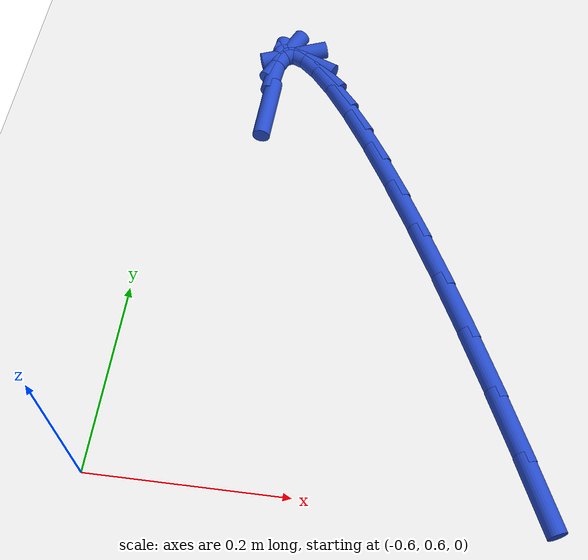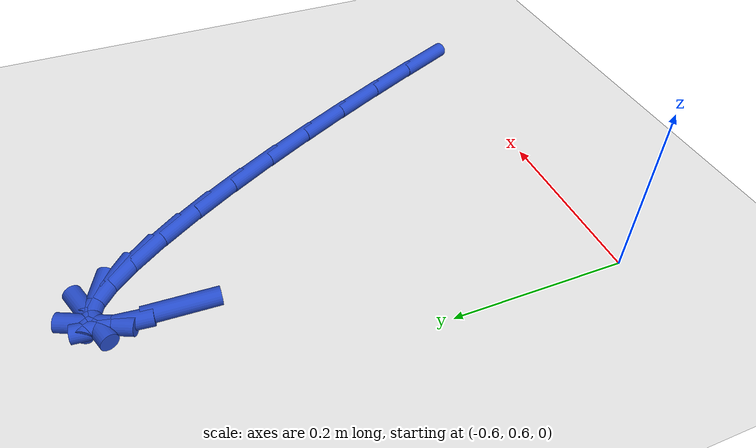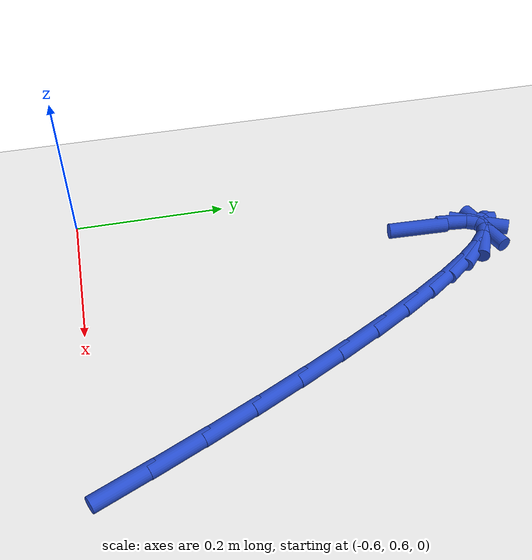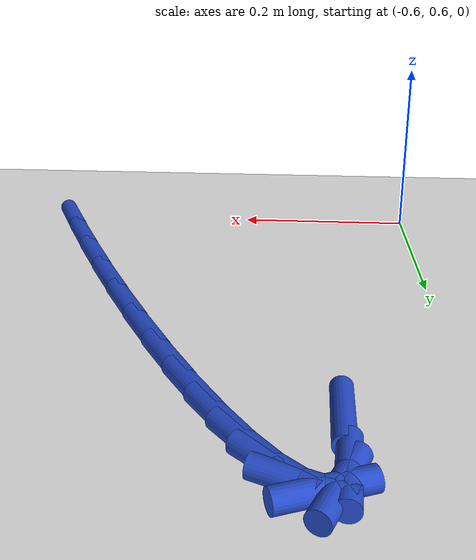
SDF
<sdf version="1.6">
 <world name="default">
  <model name="ground_plane">
   <static>1</static>
   <link name="link">
    <collision name="collision">
     <geometry><plane><normal>0 0 1</normal><size>100 100</size></plane></geometry>
     <surface><friction><ode><mu>100</mu><mu2>50</mu2></ode></friction></surface>
    </collision>
    <visual name="visual">
     <cast_shadows>0</cast_shadows>
     <geometry><plane><normal>0 0 1</normal><size>100 100</size></plane></geometry>
     <material>
      <script><uri>file://media/materials/scripts/gazebo.material</uri><name>Gazebo/WhiteGlow</name></script>
     </material>
    </visual>
   </link>
  </model>
  <model name="line">
   <link name="link_13">
    <pose>-0.17414973091709698 0.6288355741290564 0.01 0 1.57 -1.146900605725335</pose>
    <collision name="collision">
     <geometry><cylinder><radius>0.01</radius><length>0.08</length></cylinder></geometry>
    </collision>
    <visual name="visual">
     <material>
      <script><name>Gazebo/Blue</name><uri>file://media/materials/scripts/gazebo.material</uri></script>
     </material>
     <geometry><cylinder><radius>0.01</radius><length>0.08</length></cylinder></geometry>
    </visual>
   </link>
   <link name="link_14">
    <pose>-0.20246571434009497 0.6915852105498945 0.01 0 1.57 -1.1324726628470152</pose>
    <collision name="collision">
     <geometry><cylinder><radius>0.01</radius><length>0.08</length></cylinder></geometry>
    </collision>
    <visual name="visual">
     <material>
      <script><name>Gazebo/Blue</name><uri>file://media/materials/scripts/gazebo.material</uri></script>
     </material>
     <geometry><cylinder><radius>0.01</radius><length>0.08</length></cylinder></geometry>
    </visual>
   </link>
   <link name="link_15">
    <pose>-0.23149503730026788 0.7535165110334968 0.01 0 1.57 -1.1174630952753173</pose>
    <collision name="collision">
     <geometry><cylinder><radius>0.01</radius><length>0.08</length></cylinder></geometry>
    </collision>
    <visual name="visual">
     <material>
      <script><name>Gazebo/Blue</name><uri>file://media/materials/scripts/gazebo.material</uri></script>
     </material>
     <geometry><cylinder><radius>0.01</radius><length>0.08</length></cylinder></geometry>
    </visual>
   </link>
   <link name="link_16">
    <pose>-0.2608456135386098 0.8137632668056715 0.01 0 1.57 -1.101180213313666</pose>
    <collision name="collision">
     <geometry><cylinder><radius>0.01</radius><length>0.08</length></cylinder></geometry>
    </collision>
    <visual name="visual">
     <material>
      <script><name>Gazebo/Blue</name><uri>file://media/materials/scripts/gazebo.material</uri></script>
     </material>
     <geometry><cylinder><radius>0.01</radius><length>0.08</length></cylinder></geometry>
    </visual>
   </link>
   <link name="link_17">
    <pose>-0.2901253567961147 0.8714592690922263 0.01 0 1.57 -1.0827342042450954</pose>
    <collision name="collision">
     <geometry><cylinder><radius>0.01</radius><length>0.08</length></cylinder></geometry>
    </collision>
    <visual name="visual">
     <material>
      <script><name>Gazebo/Blue</name><uri>file://media/materials/scripts/gazebo.material</uri></script>
     </material>
     <geometry><cylinder><radius>0.01</radius><length>0.08</length></cylinder></geometry>
    </visual>
   </link>
   <link name="link_18">
    <pose>-0.3189421808137769 0.9257383091189695 0.01 0 1.57 -1.0608543211314778</pose>
    <collision name="collision">
     <geometry><cylinder><radius>0.01</radius><length>0.08</length></cylinder></geometry>
    </collision>
    <visual name="visual">
     <material>
      <script><name>Gazebo/Blue</name><uri>file://media/materials/scripts/gazebo.material</uri></script>
     </material>
     <geometry><cylinder><radius>0.01</radius><length>0.08</length></cylinder></geometry>
    </visual>
   </link>
   <link name="link_19">
    <pose>-0.34690399933259025 0.975734178111709 0.01 0 1.57 -1.0335499693482804</pose>
    <collision name="collision">
     <geometry><cylinder><radius>0.01</radius><length>0.08</length></cylinder></geometry>
    </collision>
    <visual name="visual">
     <material>
      <script><name>Gazebo/Blue</name><uri>file://media/materials/scripts/gazebo.material</uri></script>
     </material>
     <geometry><cylinder><radius>0.01</radius><length>0.08</length></cylinder></geometry>
    </visual>
   </link>
   <link name="link_20">
    <pose>-0.37361872609354907 1.0205806672962527 0.01 0 1.57 -0.99740561803089</pose>
    <collision name="collision">
     <geometry><cylinder><radius>0.01</radius><length>0.08</length></cylinder></geometry>
    </collision>
    <visual name="visual">
     <material>
      <script><name>Gazebo/Blue</name><uri>file://media/materials/scripts/gazebo.material</uri></script>
     </material>
     <geometry><cylinder><radius>0.01</radius><length>0.08</length></cylinder></geometry>
    </visual>
   </link>
   <link name="link_21">
    <pose>-0.3986942748376476 1.0594115678984097 0.01 0 1.57 -0.9459300663897434</pose>
    <collision name="collision">
     <geometry><cylinder><radius>0.01</radius><length>0.08</length></cylinder></geometry>
    </collision>
    <visual name="visual">
     <material>
      <script><name>Gazebo/Blue</name><uri>file://media/materials/scripts/gazebo.material</uri></script>
     </material>
     <geometry><cylinder><radius>0.01</radius><length>0.08</length></cylinder></geometry>
    </visual>
   </link>
   <link name="link_22">
    <pose>-0.4217385593058793 1.0913606711439863 0.01 0 1.57 -0.8651040193045139</pose>
    <collision name="collision">
     <geometry><cylinder><radius>0.01</radius><length>0.08</length></cylinder></geometry>
    </collision>
    <visual name="visual">
     <material>
      <script><name>Gazebo/Blue</name><uri>file://media/materials/scripts/gazebo.material</uri></script>
     </material>
     <geometry><cylinder><radius>0.01</radius><length>0.08</length></cylinder></geometry>
    </visual>
   </link>
   <link name="link_23">
    <pose>-0.44235949323923895 1.1155617682587924 0.01 0 1.57 -0.719054914021405</pose>
    <collision name="collision">
     <geometry><cylinder><radius>0.01</radius><length>0.08</length></cylinder></geometry>
    </collision>
    <visual name="visual">
     <material>
      <script><name>Gazebo/Blue</name><uri>file://media/materials/scripts/gazebo.material</uri></script>
     </material>
     <geometry><cylinder><radius>0.01</radius><length>0.08</length></cylinder></geometry>
    </visual>
   </link>
   <link name="link_24">
    <pose>-0.46016499037872005 1.131148650468634 0.01 0 1.57 -0.39618937243376834</pose>
    <collision name="collision">
     <geometry><cylinder><radius>0.01</radius><length>0.08</length></cylinder></geometry>
    </collision>
    <visual name="visual">
     <material>
      <script><name>Gazebo/Blue</name><uri>file://media/materials/scripts/gazebo.material</uri></script>
     </material>
     <geometry><cylinder><radius>0.01</radius><length>0.08</length></cylinder></geometry>
    </visual>
   </link>
   <link name="link_25">
    <pose>-0.4747629644653173 1.1372551089993213 0.01 0 1.57 0.36796831184302514</pose>
    <collision name="collision">
     <geometry><cylinder><radius>0.01</radius><length>0.08</length></cylinder></geometry>
    </collision>
    <visual name="visual">
     <material>
      <script><name>Gazebo/Blue</name><uri>file://media/materials/scripts/gazebo.material</uri></script>
     </material>
     <geometry><cylinder><radius>0.01</radius><length>0.08</length></cylinder></geometry>
    </visual>
   </link>
   <link name="link_26">
    <pose>-0.4857613292400244 1.133014935076661 0.01 0 1.57 1.1451039507992857</pose>
    <collision name="collision">
     <geometry><cylinder><radius>0.01</radius><length>0.08</length></cylinder></geometry>
    </collision>
    <visual name="visual">
     <material>
      <script><name>Gazebo/Blue</name><uri>file://media/materials/scripts/gazebo.material</uri></script>
     </material>
     <geometry><cylinder><radius>0.01</radius><length>0.08</length></cylinder></geometry>
    </visual>
   </link>
   <link name="link_27">
    <pose>-0.4927679984438357 1.1175619199264617 0.01 0 1.57 1.4758163311023142</pose>
    <collision name="collision">
     <geometry><cylinder><radius>0.01</radius><length>0.08</length></cylinder></geometry>
    </collision>
    <visual name="visual">
     <material>
      <script><name>Gazebo/Blue</name><uri>file://media/materials/scripts/gazebo.material</uri></script>
     </material>
     <geometry><cylinder><radius>0.01</radius><length>0.08</length></cylinder></geometry>
    </visual>
   </link>
   <link name="link_29">
    <pose>-0.4935959439095989 1.0500794722602085 0.01 0 1.57 1.5335190997798807</pose>
    <collision name="collision">
     <geometry><cylinder><radius>0.01</radius><length>0.08</length></cylinder></geometry>
    </collision>
    <visual name="visual">
     <material>
      <script><name>Gazebo/Blue</name><uri>file://media/materials/scripts/gazebo.material</uri></script>
     </material>
     <geometry><cylinder><radius>0.01</radius><length>0.08</length></cylinder></geometry>
    </visual>
   </link>
  </model>
 </world>
</sdf>
